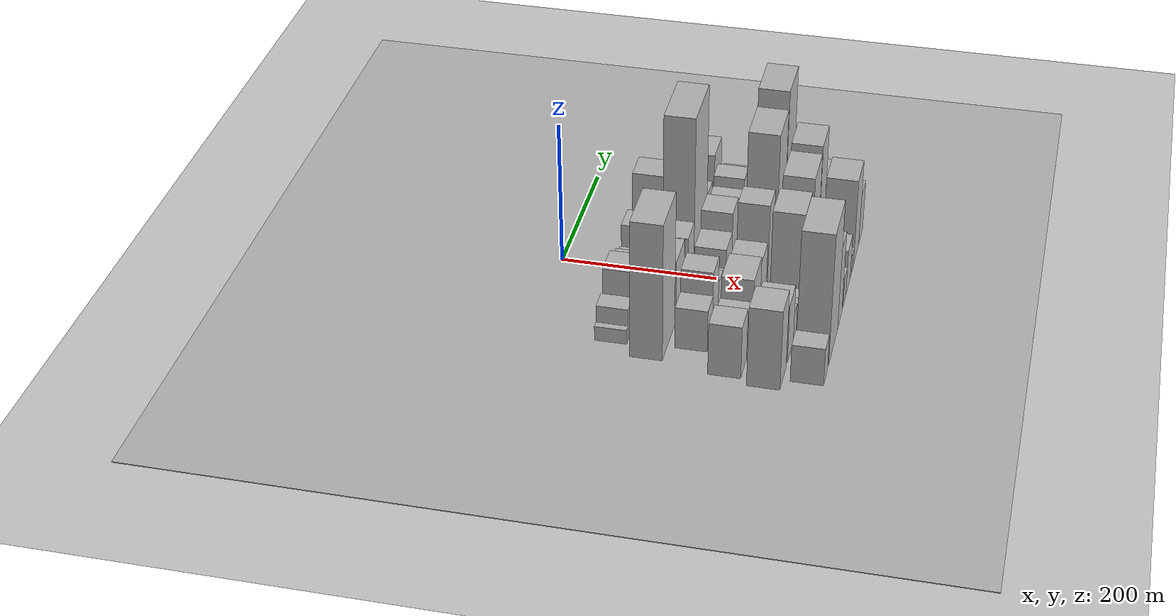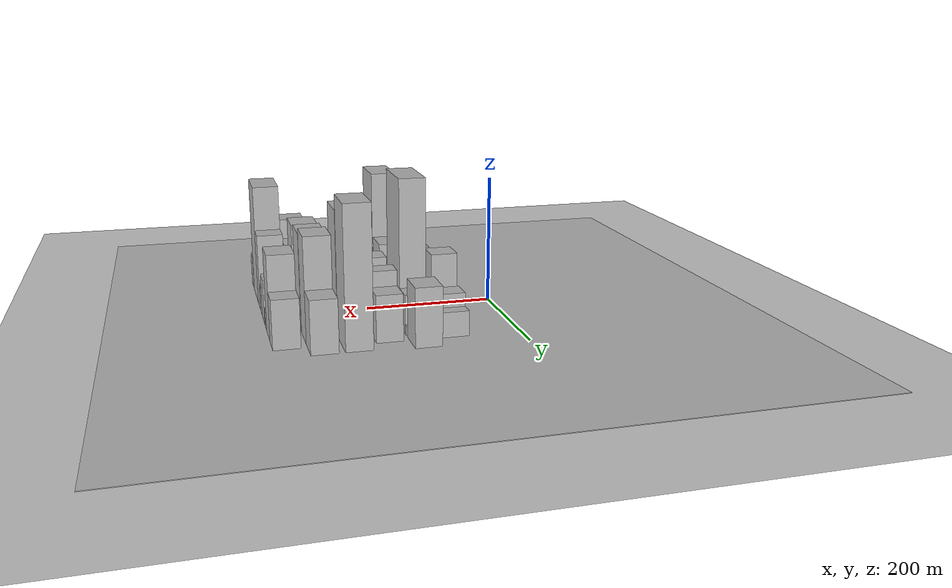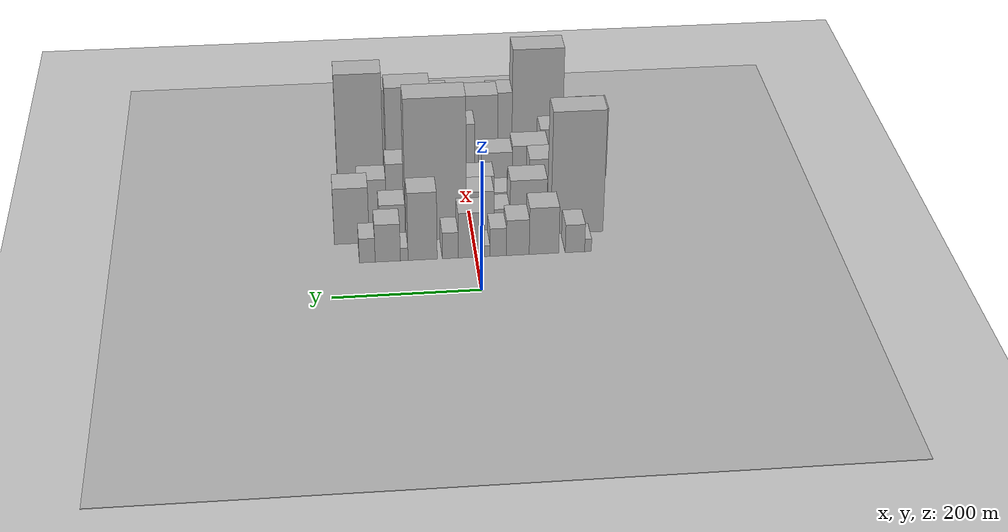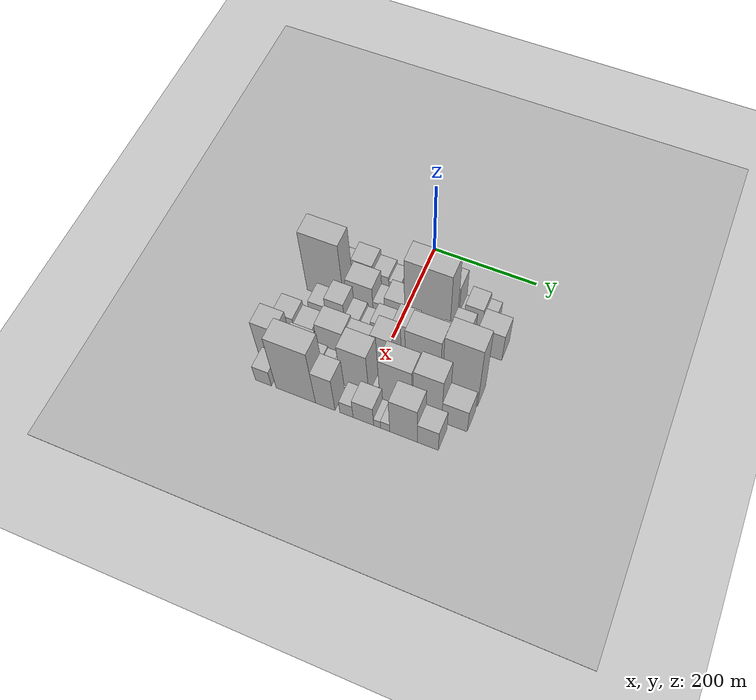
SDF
<sdf version="1.6">
 <world name="default">
  <include><name>ground_plane_1</name><uri>model://HANNAS_ground_plane</uri></include>
  <include>
   <name>ground_plane_2</name>
   <uri>model://HANNAS_ground_plane</uri>
   <pose>100 0 0  0 0 0</pose>
  </include>
  <model name="building_16">
   <static>1</static>
   <pose>100.0000 -154.2980 0 0.000000 0.000000 0.000000</pose>
   <link name="link">
    <pose>0 0 10.50 0 0 0</pose>
    <collision name="collision"><geometry><box><size>40.0000 9.3223 21.0000</size></box></geometry></collision>
    <visual name="visual">
     <cast_shadows>0</cast_shadows>
     <geometry><box><size>40.0000 9.3223 21.0000</size></box></geometry>
     <material>
      <script>
       <uri>model://HANNAS_wall/materials/scripts</uri>
       <uri>model://HANNAS_wall/materials/textures</uri>
       <name>vrc/HANNAS_wall</name>
      </script>
     </material>
    </visual>
   </link>
  </model>
  <model name="building_17">
   <static>1</static>
   <pose>100.0000 -136.1564 0 0.000000 0.000000 0.000000</pose>
   <link name="link">
    <pose>0 0 22.50 0 0 0</pose>
    <collision name="collision"><geometry><box><size>40.0000 26.9609 45.0000</size></box></geometry></collision>
    <visual name="visual">
     <cast_shadows>0</cast_shadows>
     <geometry><box><size>40.0000 26.9609 45.0000</size></box></geometry>
     <material>
      <script>
       <uri>model://HANNAS_wall/materials/scripts</uri>
       <uri>model://HANNAS_wall/materials/textures</uri>
       <name>vrc/HANNAS_wall</name>
      </script>
     </material>
    </visual>
   </link>
  </model>
  <model name="building_18">
   <static>1</static>
   <pose>100.0000 -93.2137 0 0.000000 0.000000 0.000000</pose>
   <link name="link">
    <pose>0 0 37.50 0 0 0</pose>
    <collision name="collision"><geometry><box><size>40.0000 40.9246 75.0000</size></box></geometry></collision>
    <visual name="visual">
     <cast_shadows>0</cast_shadows>
     <geometry><box><size>40.0000 40.9246 75.0000</size></box></geometry>
     <material>
      <script>
       <uri>model://HANNAS_wall/materials/scripts</uri>
       <uri>model://HANNAS_wall/materials/textures</uri>
       <name>vrc/HANNAS_wall</name>
      </script>
     </material>
    </visual>
   </link>
  </model>
  <model name="building_19">
   <static>1</static>
   <pose>100.0000 -57.0168 0 0.000000 0.000000 0.000000</pose>
   <link name="link">
    <pose>0 0 28.50 0 0 0</pose>
    <collision name="collision"><geometry><box><size>40.0000 31.4691 57.0000</size></box></geometry></collision>
    <visual name="visual">
     <cast_shadows>0</cast_shadows>
     <geometry><box><size>40.0000 31.4691 57.0000</size></box></geometry>
     <material>
      <script>
       <uri>model://HANNAS_wall/materials/scripts</uri>
       <uri>model://HANNAS_wall/materials/textures</uri>
       <name>vrc/HANNAS_wall</name>
      </script>
     </material>
    </visual>
   </link>
  </model>
  <model name="building_20">
   <static>1</static>
   <pose>100.0000 -29.9693 0 0.000000 0.000000 0.000000</pose>
   <link name="link">
    <pose>0 0 22.50 0 0 0</pose>
    <collision name="collision"><geometry><box><size>40.0000 22.6258 45.0000</size></box></geometry></collision>
    <visual name="visual">
     <cast_shadows>0</cast_shadows>
     <geometry><box><size>40.0000 22.6258 45.0000</size></box></geometry>
     <material>
      <script>
       <uri>model://HANNAS_wall/materials/scripts</uri>
       <uri>model://HANNAS_wall/materials/textures</uri>
       <name>vrc/HANNAS_wall</name>
      </script>
     </material>
    </visual>
   </link>
  </model>
  <model name="building_21">
   <static>1</static>
   <pose>100.0000 -14.8287 0 0.000000 0.000000 0.000000</pose>
   <link name="link">
    <pose>0 0 9.00 0 0 0</pose>
    <collision name="collision"><geometry><box><size>40.0000 7.6554 18.0000</size></box></geometry></collision>
    <visual name="visual">
     <cast_shadows>0</cast_shadows>
     <geometry><box><size>40.0000 7.6554 18.0000</size></box></geometry>
     <material>
      <script>
       <uri>model://HANNAS_wall/materials/scripts</uri>
       <uri>model://HANNAS_wall/materials/textures</uri>
       <name>vrc/HANNAS_wall</name>
      </script>
     </material>
    </visual>
   </link>
  </model>
  <model name="building_22">
   <static>1</static>
   <pose>100.0000 7.0305 0 0.000000 0.000000 0.000000</pose>
   <link name="link">
    <pose>0 0 36.00 0 0 0</pose>
    <collision name="collision"><geometry><box><size>40.0000 36.0629 72.0000</size></box></geometry></collision>
    <visual name="visual">
     <cast_shadows>0</cast_shadows>
     <geometry><box><size>40.0000 36.0629 72.0000</size></box></geometry>
     <material>
      <script>
       <uri>model://HANNAS_wall/materials/scripts</uri>
       <uri>model://HANNAS_wall/materials/textures</uri>
       <name>vrc/HANNAS_wall</name>
      </script>
     </material>
    </visual>
   </link>
  </model>
  <model name="building_23">
   <static>1</static>
   <pose>100.0000 36.0467 0 0.000000 0.000000 0.000000</pose>
   <link name="link">
    <pose>0 0 21.00 0 0 0</pose>
    <collision name="collision"><geometry><box><size>40.0000 21.9696 42.0000</size></box></geometry></collision>
    <visual name="visual">
     <cast_shadows>0</cast_shadows>
     <geometry><box><size>40.0000 21.9696 42.0000</size></box></geometry>
     <material>
      <script>
       <uri>model://HANNAS_wall/materials/scripts</uri>
       <uri>model://HANNAS_wall/materials/textures</uri>
       <name>vrc/HANNAS_wall</name>
      </script>
     </material>
    </visual>
   </link>
  </model>
  <model name="building_24">
   <static>1</static>
   <pose>100.0000 74.0486 0 0.000000 0.000000 0.000000</pose>
   <link name="link">
    <pose>0 0 54.00 0 0 0</pose>
    <collision name="collision"><geometry><box><size>40.0000 40.0341 108.0000</size></box></geometry></collision>
    <visual name="visual">
     <cast_shadows>0</cast_shadows>
     <geometry><box><size>40.0000 40.0341 108.0000</size></box></geometry>
     <material>
      <script>
       <uri>model://HANNAS_wall/materials/scripts</uri>
       <uri>model://HANNAS_wall/materials/textures</uri>
       <name>vrc/HANNAS_wall</name>
      </script>
     </material>
    </visual>
   </link>
  </model>
  <model name="building_25">
   <static>1</static>
   <pose>100.0000 99.2579 0 0.000000 0.000000 0.000000</pose>
   <link name="link">
    <pose>0 0 10.50 0 0 0</pose>
    <collision name="collision"><geometry><box><size>40.0000 10.3845 21.0000</size></box></geometry></collision>
    <visual name="visual">
     <cast_shadows>0</cast_shadows>
     <geometry><box><size>40.0000 10.3845 21.0000</size></box></geometry>
     <material>
      <script>
       <uri>model://HANNAS_wall/materials/scripts</uri>
       <uri>model://HANNAS_wall/materials/textures</uri>
       <name>vrc/HANNAS_wall</name>
      </script>
     </material>
    </visual>
   </link>
  </model>
  <model name="building_26">
   <static>1</static>
   <pose>100.0000 121.7577 0 0.000000 0.000000 0.000000</pose>
   <link name="link">
    <pose>0 0 30.00 0 0 0</pose>
    <collision name="collision"><geometry><box><size>40.0000 34.6151 60.0000</size></box></geometry></collision>
    <visual name="visual">
     <cast_shadows>0</cast_shadows>
     <geometry><box><size>40.0000 34.6151 60.0000</size></box></geometry>
     <material>
      <script>
       <uri>model://HANNAS_wall/materials/scripts</uri>
       <uri>model://HANNAS_wall/materials/textures</uri>
       <name>vrc/HANNAS_wall</name>
      </script>
     </material>
    </visual>
   </link>
  </model>
  <model name="building_27">
   <static>1</static>
   <pose>100.0000 149.8607 0 0.000000 0.000000 0.000000</pose>
   <link name="link">
    <pose>0 0 19.50 0 0 0</pose>
    <collision name="collision"><geometry><box><size>40.0000 21.5908 39.0000</size></box></geometry></collision>
    <visual name="visual">
     <cast_shadows>0</cast_shadows>
     <geometry><box><size>40.0000 21.5908 39.0000</size></box></geometry>
     <material>
      <script>
       <uri>model://HANNAS_wall/materials/scripts</uri>
       <uri>model://HANNAS_wall/materials/textures</uri>
       <name>vrc/HANNAS_wall</name>
      </script>
     </material>
    </visual>
   </link>
  </model>
  <model name="building_69">
   <static>1</static>
   <pose>149.0000 -145.3100 0 0.000000 0.000000 0.000000</pose>
   <link name="link">
    <pose>0 0 97.50 0 0 0</pose>
    <collision name="collision"><geometry><box><size>40.0000 73.4961 195.0000</size></box></geometry></collision>
    <visual name="visual">
     <cast_shadows>0</cast_shadows>
     <geometry><box><size>40.0000 73.4961 195.0000</size></box></geometry>
     <material>
      <script>
       <uri>model://HANNAS_wall/materials/scripts</uri>
       <uri>model://HANNAS_wall/materials/textures</uri>
       <name>vrc/HANNAS_wall</name>
      </script>
     </material>
    </visual>
   </link>
  </model>
  <model name="building_70">
   <static>1</static>
   <pose>149.0000 -76.8766 0 0.000000 0.000000 0.000000</pose>
   <link name="link">
    <pose>0 0 45.00 0 0 0</pose>
    <collision name="collision"><geometry><box><size>40.0000 51.3707 90.0000</size></box></geometry></collision>
    <visual name="visual">
     <cast_shadows>0</cast_shadows>
     <geometry><box><size>40.0000 51.3707 90.0000</size></box></geometry>
     <material>
      <script>
       <uri>model://HANNAS_wall/materials/scripts</uri>
       <uri>model://HANNAS_wall/materials/textures</uri>
       <name>vrc/HANNAS_wall</name>
      </script>
     </material>
    </visual>
   </link>
  </model>
  <model name="building_71">
   <static>1</static>
   <pose>149.0000 -39.9326 0 0.000000 0.000000 0.000000</pose>
   <link name="link">
    <pose>0 0 22.50 0 0 0</pose>
    <collision name="collision"><geometry><box><size>40.0000 22.5172 45.0000</size></box></geometry></collision>
    <visual name="visual">
     <cast_shadows>0</cast_shadows>
     <geometry><box><size>40.0000 22.5172 45.0000</size></box></geometry>
     <material>
      <script>
       <uri>model://HANNAS_wall/materials/scripts</uri>
       <uri>model://HANNAS_wall/materials/textures</uri>
       <name>vrc/HANNAS_wall</name>
      </script>
     </material>
    </visual>
   </link>
  </model>
  <model name="building_72">
   <static>1</static>
   <pose>149.0000 -9.3405 0 0.000000 0.000000 0.000000</pose>
   <link name="link">
    <pose>0 0 37.50 0 0 0</pose>
    <collision name="collision"><geometry><box><size>40.0000 38.6669 75.0000</size></box></geometry></collision>
    <visual name="visual">
     <cast_shadows>0</cast_shadows>
     <geometry><box><size>40.0000 38.6669 75.0000</size></box></geometry>
     <material>
      <script>
       <uri>model://HANNAS_wall/materials/scripts</uri>
       <uri>model://HANNAS_wall/materials/textures</uri>
       <name>vrc/HANNAS_wall</name>
      </script>
     </material>
    </visual>
   </link>
  </model>
  <model name="building_73">
   <static>1</static>
   <pose>149.0000 52.2994 0 0.000000 0.000000 0.000000</pose>
   <link name="link">
    <pose>0 0 112.50 0 0 0</pose>
    <collision name="collision"><geometry><box><size>40.0000 84.6129 225.0000</size></box></geometry></collision>
    <visual name="visual">
     <cast_shadows>0</cast_shadows>
     <geometry><box><size>40.0000 84.6129 225.0000</size></box></geometry>
     <material>
      <script>
       <uri>model://HANNAS_wall/materials/scripts</uri>
       <uri>model://HANNAS_wall/materials/textures</uri>
       <name>vrc/HANNAS_wall</name>
      </script>
     </material>
    </visual>
   </link>
  </model>
  <model name="building_74">
   <static>1</static>
   <pose>149.0000 112.5580 0 0.000000 0.000000 0.000000</pose>
   <link name="link">
    <pose>0 0 30.00 0 0 0</pose>
    <collision name="collision"><geometry><box><size>40.0000 35.9042 60.0000</size></box></geometry></collision>
    <visual name="visual">
     <cast_shadows>0</cast_shadows>
     <geometry><box><size>40.0000 35.9042 60.0000</size></box></geometry>
     <material>
      <script>
       <uri>model://HANNAS_wall/materials/scripts</uri>
       <uri>model://HANNAS_wall/materials/textures</uri>
       <name>vrc/HANNAS_wall</name>
      </script>
     </material>
    </visual>
   </link>
  </model>
  <model name="building_75">
   <static>1</static>
   <pose>149.0000 133.7605 0 0.000000 0.000000 0.000000</pose>
   <link name="link">
    <pose>0 0 7.50 0 0 0</pose>
    <collision name="collision"><geometry><box><size>40.0000 6.5008 15.0000</size></box></geometry></collision>
    <visual name="visual">
     <cast_shadows>0</cast_shadows>
     <geometry><box><size>40.0000 6.5008 15.0000</size></box></geometry>
     <material>
      <script>
       <uri>model://HANNAS_wall/materials/scripts</uri>
       <uri>model://HANNAS_wall/materials/textures</uri>
       <name>vrc/HANNAS_wall</name>
      </script>
     </material>
    </visual>
   </link>
  </model>
  <model name="building_76">
   <static>1</static>
   <pose>149.0000 169.1198 0 0.000000 0.000000 0.000000</pose>
   <link name="link">
    <pose>0 0 45.00 0 0 0</pose>
    <collision name="collision"><geometry><box><size>40.0000 48.2178 90.0000</size></box></geometry></collision>
    <visual name="visual">
     <cast_shadows>0</cast_shadows>
     <geometry><box><size>40.0000 48.2178 90.0000</size></box></geometry>
     <material>
      <script>
       <uri>model://HANNAS_wall/materials/scripts</uri>
       <uri>model://HANNAS_wall/materials/textures</uri>
       <name>vrc/HANNAS_wall</name>
      </script>
     </material>
    </visual>
   </link>
  </model>
  <model name="building_119">
   <static>1</static>
   <pose>198.0000 -136.3098 0 0.000000 0.000000 0.000000</pose>
   <link name="link">
    <pose>0 0 30.00 0 0 0</pose>
    <collision name="collision"><geometry><box><size>40.0000 33.5875 60.0000</size></box></geometry></collision>
    <visual name="visual">
     <cast_shadows>0</cast_shadows>
     <geometry><box><size>40.0000 33.5875 60.0000</size></box></geometry>
     <material>
      <script>
       <uri>model://HANNAS_wall/materials/scripts</uri>
       <uri>model://HANNAS_wall/materials/textures</uri>
       <name>vrc/HANNAS_wall</name>
      </script>
     </material>
    </visual>
   </link>
  </model>
  <model name="building_120">
   <static>1</static>
   <pose>198.0000 -101.5155 0 0.000000 0.000000 0.000000</pose>
   <link name="link">
    <pose>0 0 46.50 0 0 0</pose>
    <collision name="collision"><geometry><box><size>40.0000 36.0011 93.0000</size></box></geometry></collision>
    <visual name="visual">
     <cast_shadows>0</cast_shadows>
     <geometry><box><size>40.0000 36.0011 93.0000</size></box></geometry>
     <material>
      <script>
       <uri>model://HANNAS_wall/materials/scripts</uri>
       <uri>model://HANNAS_wall/materials/textures</uri>
       <name>vrc/HANNAS_wall</name>
      </script>
     </material>
    </visual>
   </link>
  </model>
  <model name="building_121">
   <static>1</static>
   <pose>198.0000 -69.7007 0 0.000000 0.000000 0.000000</pose>
   <link name="link">
    <pose>0 0 27.00 0 0 0</pose>
    <collision name="collision"><geometry><box><size>40.0000 27.6285 54.0000</size></box></geometry></collision>
    <visual name="visual">
     <cast_shadows>0</cast_shadows>
     <geometry><box><size>40.0000 27.6285 54.0000</size></box></geometry>
     <material>
      <script>
       <uri>model://HANNAS_wall/materials/scripts</uri>
       <uri>model://HANNAS_wall/materials/textures</uri>
       <name>vrc/HANNAS_wall</name>
      </script>
     </material>
    </visual>
   </link>
  </model>
  <model name="building_122">
   <static>1</static>
   <pose>198.0000 -44.9425 0 0.000000 0.000000 0.000000</pose>
   <link name="link">
    <pose>0 0 21.00 0 0 0</pose>
    <collision name="collision"><geometry><box><size>40.0000 21.8879 42.0000</size></box></geometry></collision>
    <visual name="visual">
     <cast_shadows>0</cast_shadows>
     <geometry><box><size>40.0000 21.8879 42.0000</size></box></geometry>
     <material>
      <script>
       <uri>model://HANNAS_wall/materials/scripts</uri>
       <uri>model://HANNAS_wall/materials/textures</uri>
       <name>vrc/HANNAS_wall</name>
      </script>
     </material>
    </visual>
   </link>
  </model>
  <model name="building_123">
   <static>1</static>
   <pose>198.0000 -13.3625 0 0.000000 0.000000 0.000000</pose>
   <link name="link">
    <pose>0 0 34.50 0 0 0</pose>
    <collision name="collision"><geometry><box><size>40.0000 41.2721 69.0000</size></box></geometry></collision>
    <visual name="visual">
     <cast_shadows>0</cast_shadows>
     <geometry><box><size>40.0000 41.2721 69.0000</size></box></geometry>
     <material>
      <script>
       <uri>model://HANNAS_wall/materials/scripts</uri>
       <uri>model://HANNAS_wall/materials/textures</uri>
       <name>vrc/HANNAS_wall</name>
      </script>
     </material>
    </visual>
   </link>
  </model>
  <model name="building_124">
   <static>1</static>
   <pose>198.0000 26.4327 0 0.000000 0.000000 0.000000</pose>
   <link name="link">
    <pose>0 0 48.00 0 0 0</pose>
    <collision name="collision"><geometry><box><size>40.0000 38.3182 96.0000</size></box></geometry></collision>
    <visual name="visual">
     <cast_shadows>0</cast_shadows>
     <geometry><box><size>40.0000 38.3182 96.0000</size></box></geometry>
     <material>
      <script>
       <uri>model://HANNAS_wall/materials/scripts</uri>
       <uri>model://HANNAS_wall/materials/textures</uri>
       <name>vrc/HANNAS_wall</name>
      </script>
     </material>
    </visual>
   </link>
  </model>
  <model name="building_125">
   <static>1</static>
   <pose>198.0000 67.0859 0 0.000000 0.000000 0.000000</pose>
   <link name="link">
    <pose>0 0 40.50 0 0 0</pose>
    <collision name="collision"><geometry><box><size>40.0000 42.9884 81.0000</size></box></geometry></collision>
    <visual name="visual">
     <cast_shadows>0</cast_shadows>
     <geometry><box><size>40.0000 42.9884 81.0000</size></box></geometry>
     <material>
      <script>
       <uri>model://HANNAS_wall/materials/scripts</uri>
       <uri>model://HANNAS_wall/materials/textures</uri>
       <name>vrc/HANNAS_wall</name>
      </script>
     </material>
    </visual>
   </link>
  </model>
  <model name="building_126">
   <static>1</static>
   <pose>198.0000 103.5206 0 0.000000 0.000000 0.000000</pose>
   <link name="link">
    <pose>0 0 48.00 0 0 0</pose>
    <collision name="collision"><geometry><box><size>40.0000 29.8809 96.0000</size></box></geometry></collision>
    <visual name="visual">
     <cast_shadows>0</cast_shadows>
     <geometry><box><size>40.0000 29.8809 96.0000</size></box></geometry>
     <material>
      <script>
       <uri>model://HANNAS_wall/materials/scripts</uri>
       <uri>model://HANNAS_wall/materials/textures</uri>
       <name>vrc/HANNAS_wall</name>
      </script>
     </material>
    </visual>
   </link>
  </model>
  <model name="building_127">
   <static>1</static>
   <pose>198.0000 138.5486 0 0.000000 0.000000 0.000000</pose>
   <link name="link">
    <pose>0 0 36.00 0 0 0</pose>
    <collision name="collision"><geometry><box><size>40.0000 40.1751 72.0000</size></box></geometry></collision>
    <visual name="visual">
     <cast_shadows>0</cast_shadows>
     <geometry><box><size>40.0000 40.1751 72.0000</size></box></geometry>
     <material>
      <script>
       <uri>model://HANNAS_wall/materials/scripts</uri>
       <uri>model://HANNAS_wall/materials/textures</uri>
       <name>vrc/HANNAS_wall</name>
      </script>
     </material>
    </visual>
   </link>
  </model>
  <model name="building_168">
   <static>1</static>
   <pose>247.0000 -176.9066 0 0.000000 0.000000 0.000000</pose>
   <link name="link">
    <pose>0 0 37.50 0 0 0</pose>
    <collision name="collision"><geometry><box><size>40.0000 38.7931 75.0000</size></box></geometry></collision>
    <visual name="visual">
     <cast_shadows>0</cast_shadows>
     <geometry><box><size>40.0000 38.7931 75.0000</size></box></geometry>
     <material>
      <script>
       <uri>model://HANNAS_wall/materials/scripts</uri>
       <uri>model://HANNAS_wall/materials/textures</uri>
       <name>vrc/HANNAS_wall</name>
      </script>
     </material>
    </visual>
   </link>
  </model>
  <model name="building_169">
   <static>1</static>
   <pose>247.0000 -139.7184 0 0.000000 0.000000 0.000000</pose>
   <link name="link">
    <pose>0 0 30.00 0 0 0</pose>
    <collision name="collision"><geometry><box><size>40.0000 35.5832 60.0000</size></box></geometry></collision>
    <visual name="visual">
     <cast_shadows>0</cast_shadows>
     <geometry><box><size>40.0000 35.5832 60.0000</size></box></geometry>
     <material>
      <script>
       <uri>model://HANNAS_wall/materials/scripts</uri>
       <uri>model://HANNAS_wall/materials/textures</uri>
       <name>vrc/HANNAS_wall</name>
      </script>
     </material>
    </visual>
   </link>
  </model>
  <model name="building_170">
   <static>1</static>
   <pose>247.0000 -90.3617 0 0.000000 0.000000 0.000000</pose>
   <link name="link">
    <pose>0 0 43.50 0 0 0</pose>
    <collision name="collision"><geometry><box><size>40.0000 51.1302 87.0000</size></box></geometry></collision>
    <visual name="visual">
     <cast_shadows>0</cast_shadows>
     <geometry><box><size>40.0000 51.1302 87.0000</size></box></geometry>
     <material>
      <script>
       <uri>model://HANNAS_wall/materials/scripts</uri>
       <uri>model://HANNAS_wall/materials/textures</uri>
       <name>vrc/HANNAS_wall</name>
      </script>
     </material>
    </visual>
   </link>
  </model>
  <model name="building_171">
   <static>1</static>
   <pose>247.0000 -42.3339 0 0.000000 0.000000 0.000000</pose>
   <link name="link">
    <pose>0 0 39.00 0 0 0</pose>
    <collision name="collision"><geometry><box><size>40.0000 44.9253 78.0000</size></box></geometry></collision>
    <visual name="visual">
     <cast_shadows>0</cast_shadows>
     <geometry><box><size>40.0000 44.9253 78.0000</size></box></geometry>
     <material>
      <script>
       <uri>model://HANNAS_wall/materials/scripts</uri>
       <uri>model://HANNAS_wall/materials/textures</uri>
       <name>vrc/HANNAS_wall</name>
      </script>
     </material>
    </visual>
   </link>
  </model>
  <model name="building_172">
   <static>1</static>
   <pose>247.0000 -15.4201 0 0.000000 0.000000 0.000000</pose>
   <link name="link">
    <pose>0 0 9.00 0 0 0</pose>
    <collision name="collision"><geometry><box><size>40.0000 8.9021 18.0000</size></box></geometry></collision>
    <visual name="visual">
     <cast_shadows>0</cast_shadows>
     <geometry><box><size>40.0000 8.9021 18.0000</size></box></geometry>
     <material>
      <script>
       <uri>model://HANNAS_wall/materials/scripts</uri>
       <uri>model://HANNAS_wall/materials/textures</uri>
       <name>vrc/HANNAS_wall</name>
      </script>
     </material>
    </visual>
   </link>
  </model>
  <model name="building_173">
   <static>1</static>
   <pose>247.0000 7.9397 0 0.000000 0.000000 0.000000</pose>
   <link name="link">
    <pose>0 0 63.00 0 0 0</pose>
    <collision name="collision"><geometry><box><size>40.0000 37.8175 126.0000</size></box></geometry></collision>
    <visual name="visual">
     <cast_shadows>0</cast_shadows>
     <geometry><box><size>40.0000 37.8175 126.0000</size></box></geometry>
     <material>
      <script>
       <uri>model://HANNAS_wall/materials/scripts</uri>
       <uri>model://HANNAS_wall/materials/textures</uri>
       <name>vrc/HANNAS_wall</name>
      </script>
     </material>
    </visual>
   </link>
  </model>
  <model name="building_174">
   <static>1</static>
   <pose>247.0000 30.5509 0 0.000000 0.000000 0.000000</pose>
   <link name="link">
    <pose>0 0 9.00 0 0 0</pose>
    <collision name="collision"><geometry><box><size>40.0000 7.4051 18.0000</size></box></geometry></collision>
    <visual name="visual">
     <cast_shadows>0</cast_shadows>
     <geometry><box><size>40.0000 7.4051 18.0000</size></box></geometry>
     <material>
      <script>
       <uri>model://HANNAS_wall/materials/scripts</uri>
       <uri>model://HANNAS_wall/materials/textures</uri>
       <name>vrc/HANNAS_wall</name>
      </script>
     </material>
    </visual>
   </link>
  </model>
  <model name="building_175">
   <static>1</static>
   <pose>247.0000 37.7864 0 0.000000 0.000000 0.000000</pose>
   <link name="link">
    <pose>0 0 7.50 0 0 0</pose>
    <collision name="collision"><geometry><box><size>40.0000 7.0658 15.0000</size></box></geometry></collision>
    <visual name="visual">
     <cast_shadows>0</cast_shadows>
     <geometry><box><size>40.0000 7.0658 15.0000</size></box></geometry>
     <material>
      <script>
       <uri>model://HANNAS_wall/materials/scripts</uri>
       <uri>model://HANNAS_wall/materials/textures</uri>
       <name>vrc/HANNAS_wall</name>
      </script>
     </material>
    </visual>
   </link>
  </model>
  <model name="building_176">
   <static>1</static>
   <pose>247.0000 46.6369 0 0.000000 0.000000 0.000000</pose>
   <link name="link">
    <pose>0 0 12.00 0 0 0</pose>
    <collision name="collision"><geometry><box><size>40.0000 10.6350 24.0000</size></box></geometry></collision>
    <visual name="visual">
     <cast_shadows>0</cast_shadows>
     <geometry><box><size>40.0000 10.6350 24.0000</size></box></geometry>
     <material>
      <script>
       <uri>model://HANNAS_wall/materials/scripts</uri>
       <uri>model://HANNAS_wall/materials/textures</uri>
       <name>vrc/HANNAS_wall</name>
      </script>
     </material>
    </visual>
   </link>
  </model>
  <model name="building_177">
   <static>1</static>
   <pose>247.0000 83.4790 0 0.000000 0.000000 0.000000</pose>
   <link name="link">
    <pose>0 0 94.50 0 0 0</pose>
    <collision name="collision"><geometry><box><size>40.0000 63.0493 189.0000</size></box></geometry></collision>
    <visual name="visual">
     <cast_shadows>0</cast_shadows>
     <geometry><box><size>40.0000 63.0493 189.0000</size></box></geometry>
     <material>
      <script>
       <uri>model://HANNAS_wall/materials/scripts</uri>
       <uri>model://HANNAS_wall/materials/textures</uri>
       <name>vrc/HANNAS_wall</name>
      </script>
     </material>
    </visual>
   </link>
  </model>
  <model name="building_178">
   <static>1</static>
   <pose>247.0000 151.7191 0 0.000000 0.000000 0.000000</pose>
   <link name="link">
    <pose>0 0 106.50 0 0 0</pose>
    <collision name="collision"><geometry><box><size>40.0000 65.4309 213.0000</size></box></geometry></collision>
    <visual name="visual">
     <cast_shadows>0</cast_shadows>
     <geometry><box><size>40.0000 65.4309 213.0000</size></box></geometry>
     <material>
      <script>
       <uri>model://HANNAS_wall/materials/scripts</uri>
       <uri>model://HANNAS_wall/materials/textures</uri>
       <name>vrc/HANNAS_wall</name>
      </script>
     </material>
    </visual>
   </link>
  </model>
  <model name="building_221">
   <static>1</static>
   <pose>296.0000 -185.8083 0 0.000000 0.000000 0.000000</pose>
   <link name="link">
    <pose>0 0 57.00 0 0 0</pose>
    <collision name="collision"><geometry><box><size>40.0000 44.6427 114.0000</size></box></geometry></collision>
    <visual name="visual">
     <cast_shadows>0</cast_shadows>
     <geometry><box><size>40.0000 44.6427 114.0000</size></box></geometry>
     <material>
      <script>
       <uri>model://HANNAS_wall/materials/scripts</uri>
       <uri>model://HANNAS_wall/materials/textures</uri>
       <name>vrc/HANNAS_wall</name>
      </script>
     </material>
    </visual>
   </link>
  </model>
  <model name="building_222">
   <static>1</static>
   <pose>296.0000 -132.3161 0 0.000000 0.000000 0.000000</pose>
   <link name="link">
    <pose>0 0 42.00 0 0 0</pose>
    <collision name="collision"><geometry><box><size>40.0000 44.3417 84.0000</size></box></geometry></collision>
    <visual name="visual">
     <cast_shadows>0</cast_shadows>
     <geometry><box><size>40.0000 44.3417 84.0000</size></box></geometry>
     <material>
      <script>
       <uri>model://HANNAS_wall/materials/scripts</uri>
       <uri>model://HANNAS_wall/materials/textures</uri>
       <name>vrc/HANNAS_wall</name>
      </script>
     </material>
    </visual>
   </link>
  </model>
  <model name="building_223">
   <static>1</static>
   <pose>296.0000 -99.4774 0 0.000000 0.000000 0.000000</pose>
   <link name="link">
    <pose>0 0 21.00 0 0 0</pose>
    <collision name="collision"><geometry><box><size>40.0000 21.3357 42.0000</size></box></geometry></collision>
    <visual name="visual">
     <cast_shadows>0</cast_shadows>
     <geometry><box><size>40.0000 21.3357 42.0000</size></box></geometry>
     <material>
      <script>
       <uri>model://HANNAS_wall/materials/scripts</uri>
       <uri>model://HANNAS_wall/materials/textures</uri>
       <name>vrc/HANNAS_wall</name>
      </script>
     </material>
    </visual>
   </link>
  </model>
  <model name="building_224">
   <static>1</static>
   <pose>296.0000 -78.4709 0 0.000000 0.000000 0.000000</pose>
   <link name="link">
    <pose>0 0 18.00 0 0 0</pose>
    <collision name="collision"><geometry><box><size>40.0000 20.6773 36.0000</size></box></geometry></collision>
    <visual name="visual">
     <cast_shadows>0</cast_shadows>
     <geometry><box><size>40.0000 20.6773 36.0000</size></box></geometry>
     <material>
      <script>
       <uri>model://HANNAS_wall/materials/scripts</uri>
       <uri>model://HANNAS_wall/materials/textures</uri>
       <name>vrc/HANNAS_wall</name>
      </script>
     </material>
    </visual>
   </link>
  </model>
  <model name="building_225">
   <static>1</static>
   <pose>296.0000 -58.2742 0 0.000000 0.000000 0.000000</pose>
   <link name="link">
    <pose>0 0 18.00 0 0 0</pose>
    <collision name="collision"><geometry><box><size>40.0000 19.7161 36.0000</size></box></geometry></collision>
    <visual name="visual">
     <cast_shadows>0</cast_shadows>
     <geometry><box><size>40.0000 19.7161 36.0000</size></box></geometry>
     <material>
      <script>
       <uri>model://HANNAS_wall/materials/scripts</uri>
       <uri>model://HANNAS_wall/materials/textures</uri>
       <name>vrc/HANNAS_wall</name>
      </script>
     </material>
    </visual>
   </link>
  </model>
  <model name="building_226">
   <static>1</static>
   <pose>296.0000 -22.2253 0 0.000000 0.000000 0.000000</pose>
   <link name="link">
    <pose>0 0 72.00 0 0 0</pose>
    <collision name="collision"><geometry><box><size>40.0000 52.3818 144.0000</size></box></geometry></collision>
    <visual name="visual">
     <cast_shadows>0</cast_shadows>
     <geometry><box><size>40.0000 52.3818 144.0000</size></box></geometry>
     <material>
      <script>
       <uri>model://HANNAS_wall/materials/scripts</uri>
       <uri>model://HANNAS_wall/materials/textures</uri>
       <name>vrc/HANNAS_wall</name>
      </script>
     </material>
    </visual>
   </link>
  </model>
  <model name="building_227">
   <static>1</static>
   <pose>296.0000 13.1952 0 0.000000 0.000000 0.000000</pose>
   <link name="link">
    <pose>0 0 12.00 0 0 0</pose>
    <collision name="collision"><geometry><box><size>40.0000 10.4592 24.0000</size></box></geometry></collision>
    <visual name="visual">
     <cast_shadows>0</cast_shadows>
     <geometry><box><size>40.0000 10.4592 24.0000</size></box></geometry>
     <material>
      <script>
       <uri>model://HANNAS_wall/materials/scripts</uri>
       <uri>model://HANNAS_wall/materials/textures</uri>
       <name>vrc/HANNAS_wall</name>
      </script>
     </material>
    </visual>
   </link>
  </model>
  <model name="building_228">
   <static>1</static>
   <pose>296.0000 53.9660 0 0.000000 0.000000 0.000000</pose>
   <link name="link">
    <pose>0 0 75.00 0 0 0</pose>
    <collision name="collision"><geometry><box><size>40.0000 59.0824 150.0000</size></box></geometry></collision>
    <visual name="visual">
     <cast_shadows>0</cast_shadows>
     <geometry><box><size>40.0000 59.0824 150.0000</size></box></geometry>
     <material>
      <script>
       <uri>model://HANNAS_wall/materials/scripts</uri>
       <uri>model://HANNAS_wall/materials/textures</uri>
       <name>vrc/HANNAS_wall</name>
      </script>
     </material>
    </visual>
   </link>
  </model>
  <model name="building_229">
   <static>1</static>
   <pose>296.0000 112.2394 0 0.000000 0.000000 0.000000</pose>
   <link name="link">
    <pose>0 0 79.50 0 0 0</pose>
    <collision name="collision"><geometry><box><size>40.0000 51.4643 159.0000</size></box></geometry></collision>
    <visual name="visual">
     <cast_shadows>0</cast_shadows>
     <geometry><box><size>40.0000 51.4643 159.0000</size></box></geometry>
     <material>
      <script>
       <uri>model://HANNAS_wall/materials/scripts</uri>
       <uri>model://HANNAS_wall/materials/textures</uri>
       <name>vrc/HANNAS_wall</name>
      </script>
     </material>
    </visual>
   </link>
  </model>
  <model name="building_230">
   <static>1</static>
   <pose>296.0000 161.1426 0 0.000000 0.000000 0.000000</pose>
   <link name="link">
    <pose>0 0 40.50 0 0 0</pose>
    <collision name="collision"><geometry><box><size>40.0000 46.3421 81.0000</size></box></geometry></collision>
    <visual name="visual">
     <cast_shadows>0</cast_shadows>
     <geometry><box><size>40.0000 46.3421 81.0000</size></box></geometry>
     <material>
      <script>
       <uri>model://HANNAS_wall/materials/scripts</uri>
       <uri>model://HANNAS_wall/materials/textures</uri>
       <name>vrc/HANNAS_wall</name>
      </script>
     </material>
    </visual>
   </link>
  </model>
  <model name="building_267">
   <static>1</static>
   <pose>345.0000 -173.5111 0 0.000000 0.000000 0.000000</pose>
   <link name="link">
    <pose>0 0 27.00 0 0 0</pose>
    <collision name="collision"><geometry><box><size>40.0000 30.6098 54.0000</size></box></geometry></collision>
    <visual name="visual">
     <cast_shadows>0</cast_shadows>
     <geometry><box><size>40.0000 30.6098 54.0000</size></box></geometry>
     <material>
      <script>
       <uri>model://HANNAS_wall/materials/scripts</uri>
       <uri>model://HANNAS_wall/materials/textures</uri>
       <name>vrc/HANNAS_wall</name>
      </script>
     </material>
    </visual>
   </link>
  </model>
  <model name="building_268">
   <static>1</static>
   <pose>345.0000 -111.7947 0 0.000000 0.000000 0.000000</pose>
   <link name="link">
    <pose>0 0 94.50 0 0 0</pose>
    <collision name="collision"><geometry><box><size>40.0000 74.8229 189.0000</size></box></geometry></collision>
    <visual name="visual">
     <cast_shadows>0</cast_shadows>
     <geometry><box><size>40.0000 74.8229 189.0000</size></box></geometry>
     <material>
      <script>
       <uri>model://HANNAS_wall/materials/scripts</uri>
       <uri>model://HANNAS_wall/materials/textures</uri>
       <name>vrc/HANNAS_wall</name>
      </script>
     </material>
    </visual>
   </link>
  </model>
  <model name="building_269">
   <static>1</static>
   <pose>345.0000 -55.9695 0 0.000000 0.000000 0.000000</pose>
   <link name="link">
    <pose>0 0 60.00 0 0 0</pose>
    <collision name="collision"><geometry><box><size>40.0000 36.8276 120.0000</size></box></geometry></collision>
    <visual name="visual">
     <cast_shadows>0</cast_shadows>
     <geometry><box><size>40.0000 36.8276 120.0000</size></box></geometry>
     <material>
      <script>
       <uri>model://HANNAS_wall/materials/scripts</uri>
       <uri>model://HANNAS_wall/materials/textures</uri>
       <name>vrc/HANNAS_wall</name>
      </script>
     </material>
    </visual>
   </link>
  </model>
  <model name="building_270">
   <static>1</static>
   <pose>345.0000 -16.2764 0 0.000000 0.000000 0.000000</pose>
   <link name="link">
    <pose>0 0 22.50 0 0 0</pose>
    <collision name="collision"><geometry><box><size>40.0000 24.5586 45.0000</size></box></geometry></collision>
    <visual name="visual">
     <cast_shadows>0</cast_shadows>
     <geometry><box><size>40.0000 24.5586 45.0000</size></box></geometry>
     <material>
      <script>
       <uri>model://HANNAS_wall/materials/scripts</uri>
       <uri>model://HANNAS_wall/materials/textures</uri>
       <name>vrc/HANNAS_wall</name>
      </script>
     </material>
    </visual>
   </link>
  </model>
  <model name="building_271">
   <static>1</static>
   <pose>345.0000 15.0123 0 0.000000 0.000000 0.000000</pose>
   <link name="link">
    <pose>0 0 34.50 0 0 0</pose>
    <collision name="collision"><geometry><box><size>40.0000 38.0188 69.0000</size></box></geometry></collision>
    <visual name="visual">
     <cast_shadows>0</cast_shadows>
     <geometry><box><size>40.0000 38.0188 69.0000</size></box></geometry>
     <material>
      <script>
       <uri>model://HANNAS_wall/materials/scripts</uri>
       <uri>model://HANNAS_wall/materials/textures</uri>
       <name>vrc/HANNAS_wall</name>
      </script>
     </material>
    </visual>
   </link>
  </model>
  <model name="building_272">
   <static>1</static>
   <pose>345.0000 40.3163 0 0.000000 0.000000 0.000000</pose>
   <link name="link">
    <pose>0 0 13.50 0 0 0</pose>
    <collision name="collision"><geometry><box><size>40.0000 12.5892 27.0000</size></box></geometry></collision>
    <visual name="visual">
     <cast_shadows>0</cast_shadows>
     <geometry><box><size>40.0000 12.5892 27.0000</size></box></geometry>
     <material>
      <script>
       <uri>model://HANNAS_wall/materials/scripts</uri>
       <uri>model://HANNAS_wall/materials/textures</uri>
       <name>vrc/HANNAS_wall</name>
      </script>
     </material>
    </visual>
   </link>
  </model>
  <model name="building_273">
   <static>1</static>
   <pose>345.0000 55.0047 0 0.000000 0.000000 0.000000</pose>
   <link name="link">
    <pose>0 0 15.00 0 0 0</pose>
    <collision name="collision"><geometry><box><size>40.0000 16.7875 30.0000</size></box></geometry></collision>
    <visual name="visual">
     <cast_shadows>0</cast_shadows>
     <geometry><box><size>40.0000 16.7875 30.0000</size></box></geometry>
     <material>
      <script>
       <uri>model://HANNAS_wall/materials/scripts</uri>
       <uri>model://HANNAS_wall/materials/textures</uri>
       <name>vrc/HANNAS_wall</name>
      </script>
     </material>
    </visual>
   </link>
  </model>
  <model name="building_274">
   <static>1</static>
   <pose>345.0000 88.2772 0 0.000000 0.000000 0.000000</pose>
   <link name="link">
    <pose>0 0 64.50 0 0 0</pose>
    <collision name="collision"><geometry><box><size>40.0000 49.7576 129.0000</size></box></geometry></collision>
    <visual name="visual">
     <cast_shadows>0</cast_shadows>
     <geometry><box><size>40.0000 49.7576 129.0000</size></box></geometry>
     <material>
      <script>
       <uri>model://HANNAS_wall/materials/scripts</uri>
       <uri>model://HANNAS_wall/materials/textures</uri>
       <name>vrc/HANNAS_wall</name>
      </script>
     </material>
    </visual>
   </link>
  </model>
  <model name="building_275">
   <static>1</static>
   <pose>345.0000 132.2573 0 0.000000 0.000000 0.000000</pose>
   <link name="link">
    <pose>0 0 37.50 0 0 0</pose>
    <collision name="collision"><geometry><box><size>40.0000 38.2026 75.0000</size></box></geometry></collision>
    <visual name="visual">
     <cast_shadows>0</cast_shadows>
     <geometry><box><size>40.0000 38.2026 75.0000</size></box></geometry>
     <material>
      <script>
       <uri>model://HANNAS_wall/materials/scripts</uri>
       <uri>model://HANNAS_wall/materials/textures</uri>
       <name>vrc/HANNAS_wall</name>
      </script>
     </material>
    </visual>
   </link>
  </model>
 </world>
</sdf>
